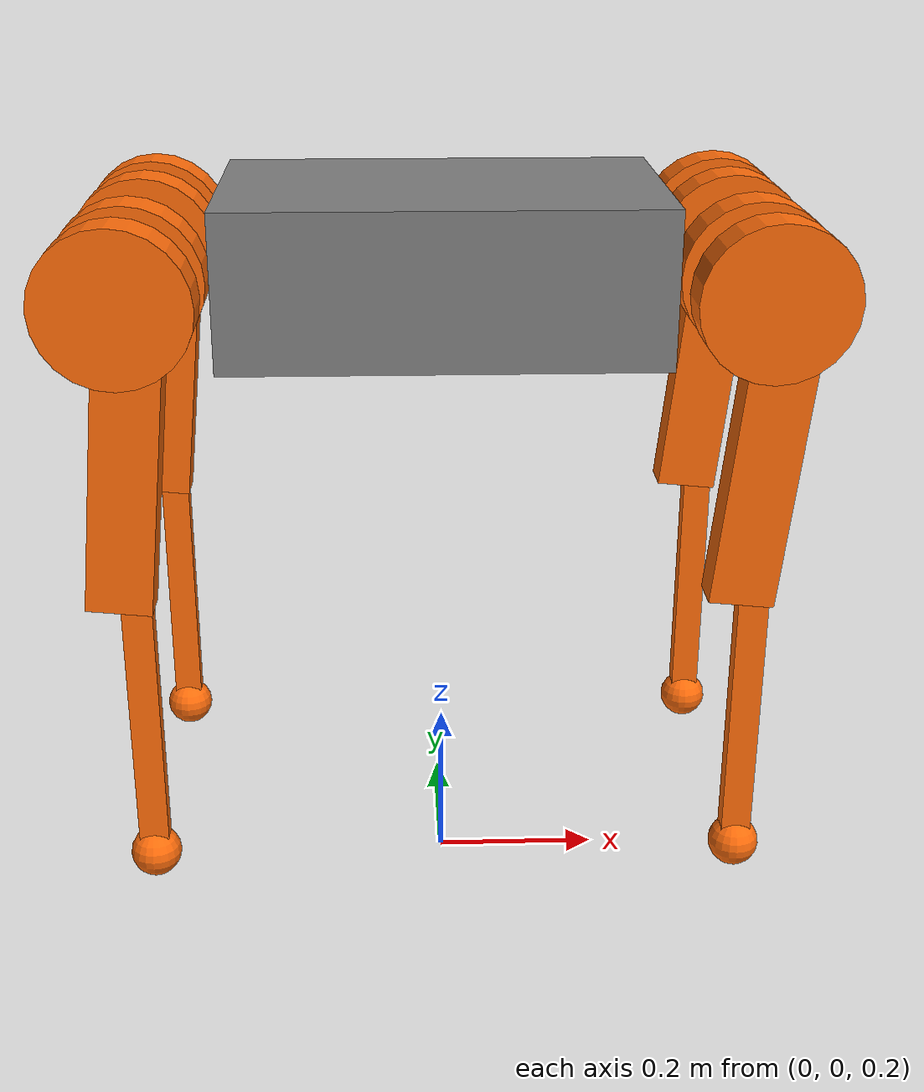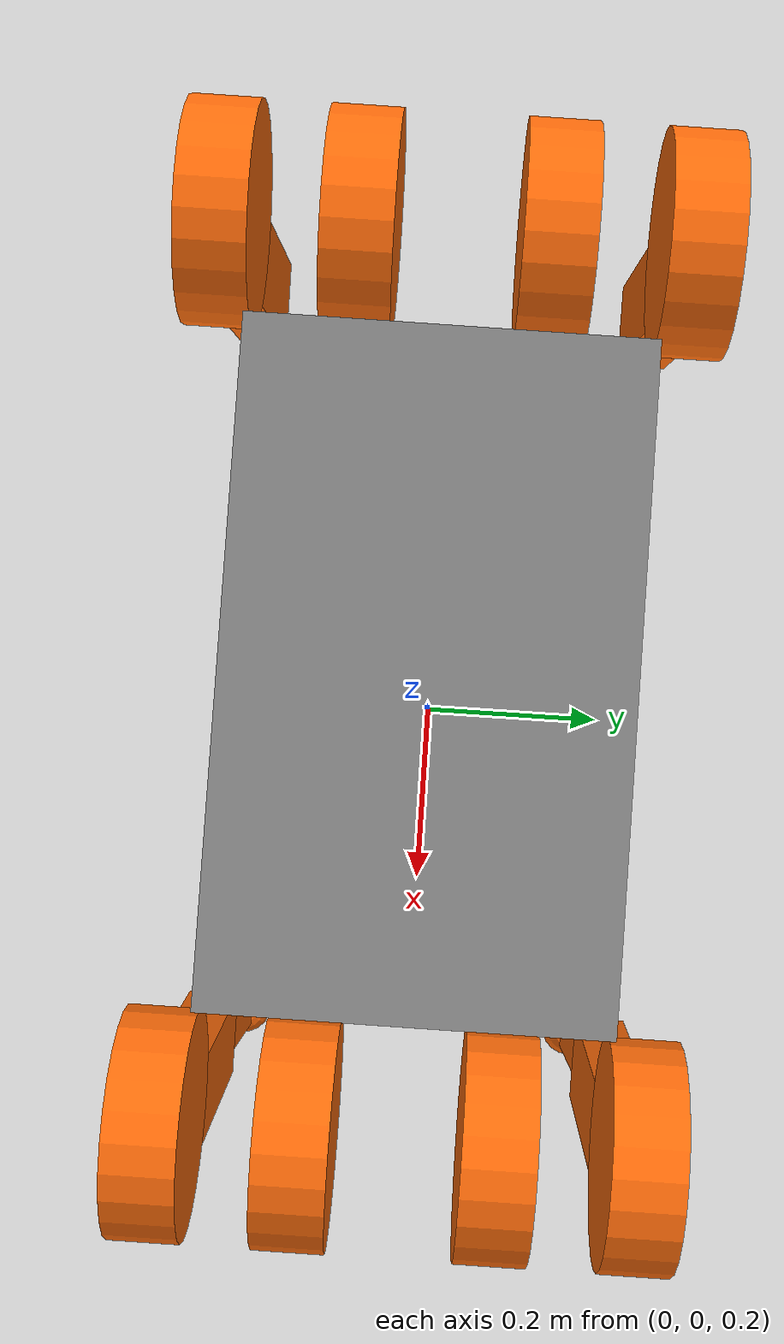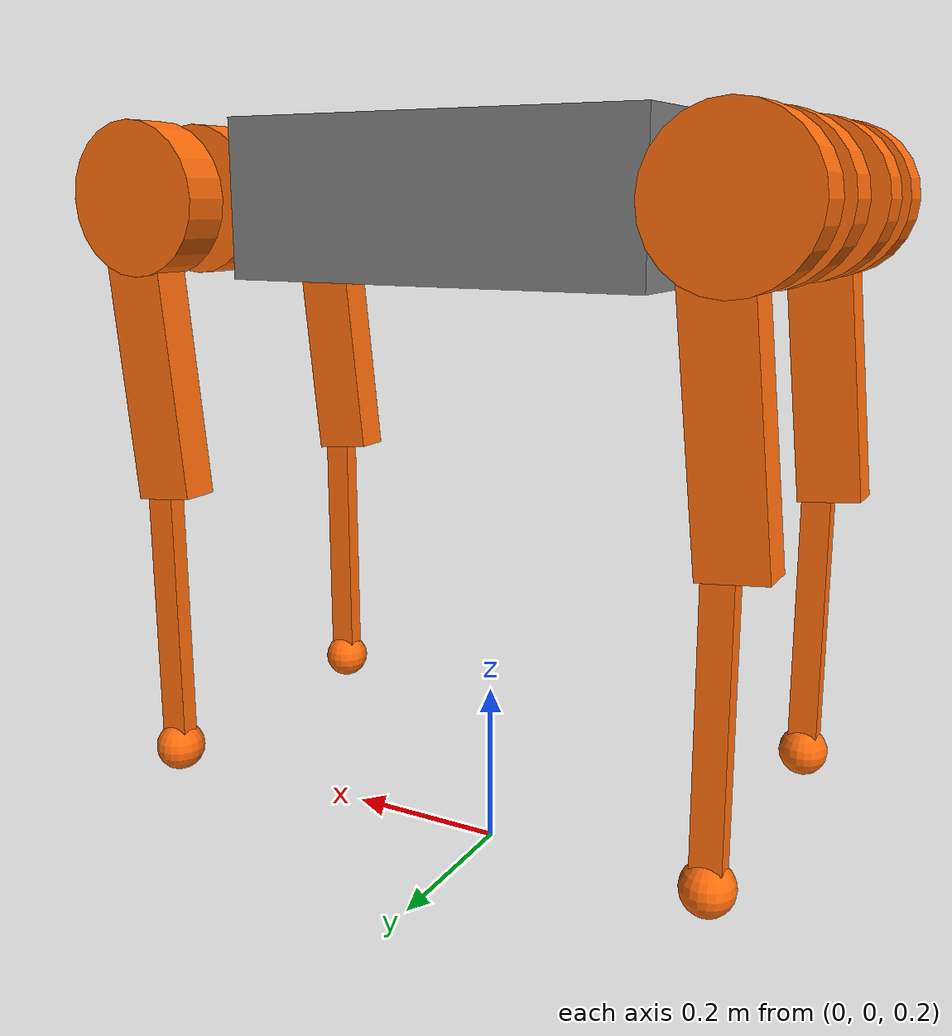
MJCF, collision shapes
<mujoco model="dog200">
    <compiler angle="radian" meshdir="meshes/"/>
    <asset>
        <mesh name="trunk" file="trunk.STL" />
        <mesh name="LF_HIP" file="LF_HIP.STL" />
        <mesh name="R_thigh" file="R_thigh.STL" />
        <mesh name="calf" file="calf.STL" />
        <mesh name="L_thigh" file="L_thigh.STL" />
    </asset>
    <worldbody>
        <body name="trunk" pos="0 0 1.0">
            <inertial pos="0.00789711 0.00953951 -0.0051841" quat="0.0205161 0.711371 0.0195777 0.702245" mass="27.3263" diaginertia="1.18815 1.09304 0.305078" />
            <joint name="floating_base_joint" type="free" />
            <geom type="mesh" contype="0" conaffinity="0" group="1" mesh="trunk" />
            <geom size="0.253 0.152 0.09" type="box" />
            <geom size="0.0075 0.0075 0.002" type="box" contype="0" conaffinity="0" group="1" />

            <body name="FL_hip" pos="0.35 0.075 0">
                <inertial pos="-0.011504 -0.000224 -1.3e-05" quat="0.498478 0.498792 0.501765 0.500957" mass="2.676" diaginertia="0.0113232 0.007225 0.00545482" />
                <joint name="FL_hip_joint" pos="0 0 0" axis="1 0 0" limited="true" range="-0.523599 0.523599" />
                <geom type="mesh" contype="0" conaffinity="0" group="1" rgba="1 0.423529 0.0392157 1" mesh="LF_HIP" />
                <geom size="0.0875 0.0275" quat="0.707107 0.707107 0 0" type="cylinder" rgba="1 0.423529 0.0392157 1" />
                <body name="FL_thigh" pos="0 0.10765 0">
                    <inertial pos="-0.007531 -0.02581 -0.050382" quat="0.74949 0.0608 -0.0104963 0.659134" mass="4.73942" diaginertia="0.0736307 0.0691052 0.0113391" />
                    <joint name="FL_thigh_joint" pos="0 0 0" axis="0 -1 0" limited="true" range="-1.98968 0.488692" />
                    <geom type="mesh" contype="0" conaffinity="0" group="1" rgba="1 0.423529 0.0392157 1" mesh="L_thigh" />
                    <geom size="0.175 0.0225 0.0375" pos="0 0 -0.175" quat="0.670882 0 0.741564 0" type="box" rgba="1 0.423529 0.0392157 1" />
                    <geom size="0.0875 0.0275" quat="0.707107 0.707107 0 0" type="cylinder" rgba="1 0.423529 0.0392157 1" />
                    <body name="FL_calf" pos="0 0 -0.35">
                        <inertial pos="0.0112318 7.49565e-05 -0.146471" quat="0.70682 -0.00486107 -0.00436292 0.707363" mass="0.753616" diaginertia="0.0150568 0.0148607 0.000362318" />
                        <joint name="FL_calf_joint" pos="0 0 0" axis="0 -1 0" limited="true" range="1.02974 2.72271" />
                        <geom type="mesh" contype="0" conaffinity="0" group="1" rgba="1 0.423529 0.0392157 1" mesh="calf" />
                        <geom size="0.164 0.011 0.0175" pos="0 0 -0.164" quat="0.707107 0 0.707107 0" type="box" rgba="1 0.423529 0.0392157 1" />
                        <geom size="0.02" pos="0 0 -0.328" contype="0" conaffinity="0" group="1" rgba="1 0.423529 0.0392157 1" />
                        <geom size="0.03" pos="0 0 -0.328" rgba="1 0.423529 0.0392157 1" />
                    </body>
                </body>
            </body>
            <body name="FR_hip" pos="0.35 -0.075 0">
                <inertial pos="-0.011504 0.000224 1.3e-05" quat="0.501765 0.500957 0.498478 0.498792" mass="2.676" diaginertia="0.0113232 0.007225 0.00545482" />
                <joint name="FR_hip_joint" pos="0 0 0" axis="1 0 0" limited="true" range="-0.523599 0.523599" />
                <geom quat="0 1 0 0" type="mesh" contype="0" conaffinity="0" group="1" rgba="1 0.423529 0.0392157 1" mesh="LF_HIP" />
                <geom size="0.0875 0.0275" quat="0.707107 0.707107 0 0" type="cylinder" rgba="1 0.423529 0.0392157 1" />
                <body name="FR_thigh" pos="0 -0.10765 0">
                    <inertial pos="-0.007538 0.024625 -0.050384" quat="0.992524 -0.11444 0.0295516 -0.0304463" mass="4.73942" diaginertia="0.0858268 0.0755596 0.0261026" />
                    <joint name="FR_thigh_joint" pos="0 0 0" axis="0 -1 0" limited="true" range="-1.98968 0.488692" />
                    <geom type="mesh" contype="0" conaffinity="0" group="1" rgba="1 0.423529 0.0392157 1" mesh="R_thigh" />
                    <geom size="0.175 0.0225 0.0375" pos="0 0 -0.175" quat="0.670882 0 0.741564 0" type="box" rgba="1 0.423529 0.0392157 1" />
                    <geom size="0.0875 0.0275" quat="0.707107 0.707107 0 0" type="cylinder" rgba="1 0.423529 0.0392157 1" />
                    <body name="FR_calf" pos="0 0 -0.35">
                        <inertial pos="0.0112318 7.49565e-05 -0.146471" quat="0.70682 -0.00486107 -0.00436292 0.707363" mass="0.753616" diaginertia="0.0150568 0.0148607 0.000362318" />
                        <joint name="FR_calf_joint" pos="0 0 0" axis="0 -1 0" limited="true" range="1.02974 2.72271" />
                        <geom type="mesh" contype="0" conaffinity="0" group="1" rgba="1 0.423529 0.0392157 1" mesh="calf" />
                        <geom size="0.164 0.011 0.0175" pos="0 0 -0.164" quat="0.707107 0 0.707107 0" type="box" rgba="1 0.423529 0.0392157 1" />
                        <geom size="0.02" pos="0 0 -0.328" contype="0" conaffinity="0" group="1" rgba="1 0.423529 0.0392157 1" />
                        <geom size="0.03" pos="0 0 -0.328" rgba="1 0.423529 0.0392157 1" />
                    </body>
                </body>
            </body>

            <body name="RL_hip" pos="-0.35 0.075 0">
                <inertial pos="0.011504 -0.000224 1.3e-05" quat="0.500957 0.501765 0.498792 0.498478" mass="2.676" diaginertia="0.0113232 0.007225 0.00545482" />
                <joint name="RL_hip_joint" pos="0 0 0" axis="1 0 0" limited="true" range="-0.523599 0.523599" />
                <geom quat="0 0 1 0" type="mesh" contype="0" conaffinity="0" group="1" rgba="1 0.423529 0.0392157 1" mesh="LF_HIP" />
                <geom size="0.0875 0.0275" quat="0.707107 0.707107 0 0" type="cylinder" rgba="1 0.423529 0.0392157 1" />
                <body name="RL_thigh" pos="0 0.10765 0">
                    <inertial pos="-0.007531 -0.02581 -0.050382" quat="0.74949 0.0608 -0.0104963 0.659134" mass="4.73942" diaginertia="0.0736307 0.0691052 0.0113391" />
                    <joint name="RL_thigh_joint" pos="0 0 0" axis="0 -1 0" limited="true" range="-1.98968 0.488692" />
                    <geom type="mesh" contype="0" conaffinity="0" group="1" rgba="1 0.423529 0.0392157 1" mesh="L_thigh" />
                    <geom size="0.175 0.0225 0.0375" pos="0 0 -0.175" quat="0.670882 0 0.741564 0" type="box" rgba="1 0.423529 0.0392157 1" />
                    <geom size="0.0875 0.0275" quat="0.707107 0.707107 0 0" type="cylinder" rgba="1 0.423529 0.0392157 1" />
                    <body name="RL_calf" pos="0 0 -0.35">
                        <inertial pos="0.0112318 7.49565e-05 -0.146471" quat="0.70682 -0.00486107 -0.00436292 0.707363" mass="0.753616" diaginertia="0.0150568 0.0148607 0.000362318" />
                        <joint name="RL_calf_joint" pos="0 0 0" axis="0 -1 0" limited="true" range="1.02974 2.72271" />
                        <geom type="mesh" contype="0" conaffinity="0" group="1" rgba="1 0.423529 0.0392157 1" mesh="calf" />
                        <geom size="0.164 0.011 0.0175" pos="0 0 -0.164" quat="0.707107 0 0.707107 0" type="box" rgba="1 0.423529 0.0392157 1" />
                        <geom size="0.02" pos="0 0 -0.328" contype="0" conaffinity="0" group="1" rgba="1 0.423529 0.0392157 1" />
                        <geom size="0.03" pos="0 0 -0.328" rgba="1 0.423529 0.0392157 1" />
                    </body>
                </body>
            </body>
            <body name="RR_hip" pos="-0.35 -0.075 0">
                <inertial pos="0.011504 0.000224 -1.3e-05" quat="0.498792 0.498478 0.500957 0.501765" mass="2.676" diaginertia="0.0113232 0.007225 0.00545482" />
                <joint name="RR_hip_joint" pos="0 0 0" axis="1 0 0" limited="true" range="-0.523599 0.523599" />
                <geom quat="0 0 0 -1" type="mesh" contype="0" conaffinity="0" group="1" rgba="1 0.423529 0.0392157 1" mesh="LF_HIP" />
                <geom size="0.0875 0.0275" quat="0.707107 0.707107 0 0" type="cylinder" rgba="1 0.423529 0.0392157 1" />
                <body name="RR_thigh" pos="0 -0.10765 0">
                    <inertial pos="-0.007538 0.024625 -0.050384" quat="0.992524 -0.11444 0.0295516 -0.0304463" mass="4.73942" diaginertia="0.0858268 0.0755596 0.0261026" />
                    <joint name="RR_thigh_joint" pos="0 0 0" axis="0 -1 0" limited="true" range="-1.98968 0.488692" />
                    <geom type="mesh" contype="0" conaffinity="0" group="1" rgba="1 0.423529 0.0392157 1" mesh="R_thigh" />
                    <geom size="0.175 0.0225 0.0375" pos="0 0 -0.175" quat="0.670882 0 0.741564 0" type="box" rgba="1 0.423529 0.0392157 1" />
                    <geom size="0.0875 0.0275" quat="0.707107 0.707107 0 0" type="cylinder" rgba="1 0.423529 0.0392157 1" />
                    <body name="RR_calf" pos="0 0 -0.35">
                        <inertial pos="0.0112318 7.49565e-05 -0.146471" quat="0.70682 -0.00486107 -0.00436292 0.707363" mass="0.753616" diaginertia="0.0150568 0.0148607 0.000362318" />
                        <joint name="RR_calf_joint" pos="0 0 0" axis="0 -1 0" limited="true" range="1.02974 2.72271" />
                        <geom type="mesh" contype="0" conaffinity="0" group="1" rgba="1 0.423529 0.0392157 1" mesh="calf" />
                        <geom size="0.164 0.011 0.0175" pos="0 0 -0.164" quat="0.707107 0 0.707107 0" type="box" rgba="1 0.423529 0.0392157 1" />
                        <geom size="0.02" pos="0 0 -0.328" contype="0" conaffinity="0" group="1" rgba="1 0.423529 0.0392157 1" />
                        <geom size="0.03" pos="0 0 -0.328" rgba="1 0.423529 0.0392157 1" />
                    </body>
                </body>
            </body>
        </body>
    </worldbody>
<actuator>
    <motor name="FL_hip" joint="FL_hip_joint" />
    <motor name="FL_thigh" joint="FL_thigh_joint" />
    <motor name="FL_calf" joint="FL_calf_joint" />
    <motor name="FR_hip" joint="FR_hip_joint" />
    <motor name="FR_thigh" joint="FR_thigh_joint" />
    <motor name="FR_calf" joint="FR_calf_joint" />
    <motor name="RL_hip" joint="RL_hip_joint" />
    <motor name="RL_thigh" joint="RL_thigh_joint" />
    <motor name="RL_calf" joint="RL_calf_joint" />
    <motor name="RR_hip" joint="RR_hip_joint" />
    <motor name="RR_thigh" joint="RR_thigh_joint" />
    <motor name="RR_calf" joint="RR_calf_joint" />
</actuator>
</mujoco>
